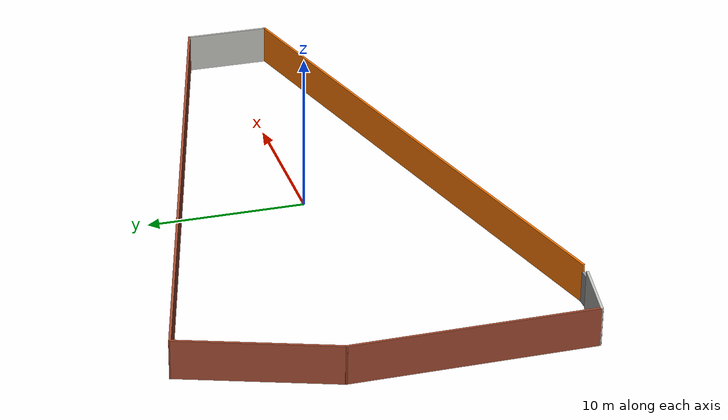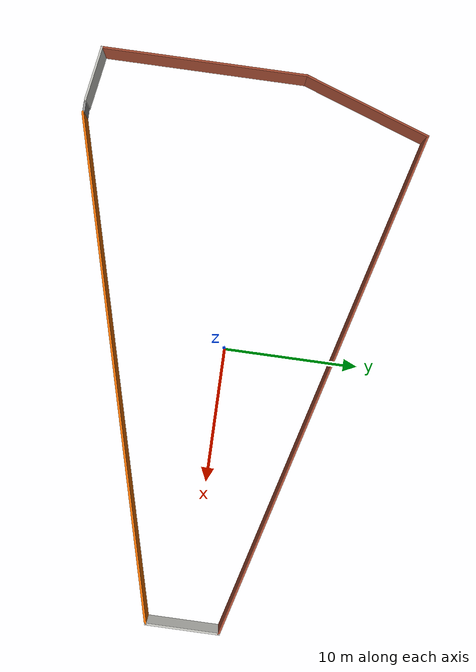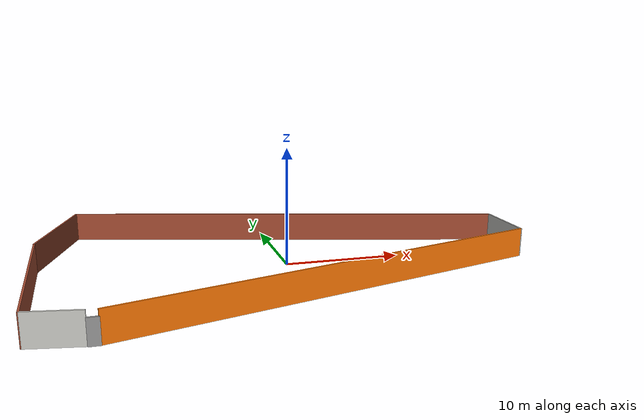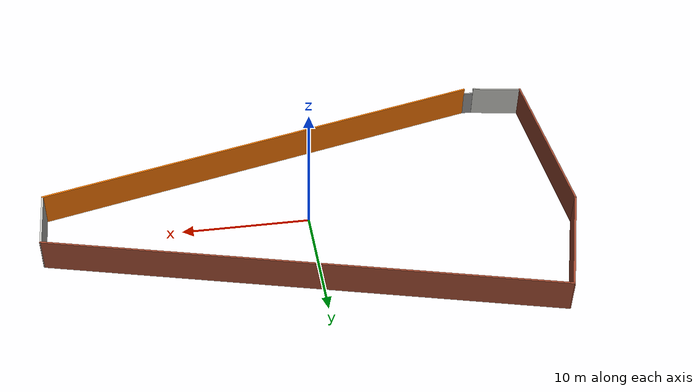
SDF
<?xml version='1.0'?>
<sdf version='1.6'>
  <model name='Building'>
    <link name='Door_0'>
      <pose frame=''>-16.0335 -12.5896 0 0 -0 0</pose>
      <self_collide>0</self_collide>
      <enable_wind>0</enable_wind>
      <kinematic>0</kinematic>
      <visual name='Door_0_Visual'>
        <pose frame=''>0 0 1 0 -0 0</pose>
        <geometry>
          <box>
            <size>0.9 0.17 2</size>
          </box>
        </geometry>
        <material>
          <script>
            <uri>file://media/materials/scripts/gazebo.material</uri>
            <name>Gazebo/Grey</name>
          </script>
        </material>
        <transparency>0</transparency>
        <cast_shadows>1</cast_shadows>
      </visual>
      <collision name='Door_0_Collision'>
        <laser_retro>0</laser_retro>
        <max_contacts>10</max_contacts>
        <pose frame=''>0 0 1 0 -0 0</pose>
        <geometry>
          <box>
            <size>0.9 0.17 2</size>
          </box>
        </geometry>
        <surface>
          <friction>
            <ode>
              <mu>1</mu>
              <mu2>1</mu2>
              <fdir1>0 0 0</fdir1>
              <slip1>0</slip1>
              <slip2>0</slip2>
            </ode>
            <torsional>
              <coefficient>1</coefficient>
              <patch_radius>0</patch_radius>
              <surface_radius>0</surface_radius>
              <use_patch_radius>1</use_patch_radius>
              <ode>
                <slip>0</slip>
              </ode>
            </torsional>
          </friction>
          <bounce>
            <restitution_coefficient>0</restitution_coefficient>
            <threshold>1e+06</threshold>
          </bounce>
          <contact>
            <collide_without_contact>0</collide_without_contact>
            <collide_without_contact_bitmask>1</collide_without_contact_bitmask>
            <collide_bitmask>1</collide_bitmask>
            <ode>
              <soft_cfm>0</soft_cfm>
              <soft_erp>0.2</soft_erp>
              <kp>1e+13</kp>
              <kd>1</kd>
              <max_vel>0.01</max_vel>
              <min_depth>0</min_depth>
            </ode>
            <bullet>
              <split_impulse>1</split_impulse>
              <split_impulse_penetration_threshold>-0.01</split_impulse_penetration_threshold>
              <soft_cfm>0</soft_cfm>
              <soft_erp>0.2</soft_erp>
              <kp>1e+13</kp>
              <kd>1</kd>
            </bullet>
          </contact>
        </surface>
      </collision>
    </link>
    <link name='Wall_1'>
      <pose frame=''>-20.481 -4.29272 0 0 -0 1.5708</pose>
      <self_collide>0</self_collide>
      <enable_wind>0</enable_wind>
      <kinematic>0</kinematic>
      <visual name='Wall_1_Visual'>
        <pose frame=''>0 0 1.25 0 -0 0</pose>
        <geometry>
          <box>
            <size>15.25 0.15 2.5</size>
          </box>
        </geometry>
        <material>
          <script>
            <uri>file://media/materials/scripts/gazebo.material</uri>
            <name>Gazebo/Bricks</name>
          </script>
          <ambient>1 1 1 1</ambient>
        </material>
        <meta>
          <layer>0</layer>
        </meta>
        <transparency>0</transparency>
        <cast_shadows>1</cast_shadows>
      </visual>
      <collision name='Wall_1_Collision'>
        <laser_retro>0</laser_retro>
        <max_contacts>10</max_contacts>
        <pose frame=''>0 0 1.25 0 -0 0</pose>
        <geometry>
          <box>
            <size>15.25 0.15 2.5</size>
          </box>
        </geometry>
        <surface>
          <friction>
            <ode>
              <mu>1</mu>
              <mu2>1</mu2>
              <fdir1>0 0 0</fdir1>
              <slip1>0</slip1>
              <slip2>0</slip2>
            </ode>
            <torsional>
              <coefficient>1</coefficient>
              <patch_radius>0</patch_radius>
              <surface_radius>0</surface_radius>
              <use_patch_radius>1</use_patch_radius>
              <ode>
                <slip>0</slip>
              </ode>
            </torsional>
          </friction>
          <bounce>
            <restitution_coefficient>0</restitution_coefficient>
            <threshold>1e+06</threshold>
          </bounce>
          <contact>
            <collide_without_contact>0</collide_without_contact>
            <collide_without_contact_bitmask>1</collide_without_contact_bitmask>
            <collide_bitmask>1</collide_bitmask>
            <ode>
              <soft_cfm>0</soft_cfm>
              <soft_erp>0.2</soft_erp>
              <kp>1e+13</kp>
              <kd>1</kd>
              <max_vel>0.01</max_vel>
              <min_depth>0</min_depth>
            </ode>
            <bullet>
              <split_impulse>1</split_impulse>
              <split_impulse_penetration_threshold>-0.01</split_impulse_penetration_threshold>
              <soft_cfm>0</soft_cfm>
              <soft_erp>0.2</soft_erp>
              <kp>1e+13</kp>
              <kd>1</kd>
            </bullet>
          </contact>
        </surface>
      </collision>
    </link>
    <link name='Wall_10'>
      <pose frame=''>-18.8821 7.91196 0 0 0 -1.90166</pose>
      <self_collide>0</self_collide>
      <enable_wind>0</enable_wind>
      <kinematic>0</kinematic>
      <visual name='Wall_10_Visual'>
        <pose frame=''>0 0 1.25 0 -0 0</pose>
        <geometry>
          <box>
            <size>9.99324 0.15 2.5</size>
          </box>
        </geometry>
        <material>
          <script>
            <uri>file://media/materials/scripts/gazebo.material</uri>
            <name>Gazebo/Bricks</name>
          </script>
          <ambient>1 1 1 1</ambient>
        </material>
        <meta>
          <layer>0</layer>
        </meta>
        <transparency>0</transparency>
        <cast_shadows>1</cast_shadows>
      </visual>
      <collision name='Wall_10_Collision'>
        <laser_retro>0</laser_retro>
        <max_contacts>10</max_contacts>
        <pose frame=''>0 0 1.25 0 -0 0</pose>
        <geometry>
          <box>
            <size>9.99324 0.15 2.5</size>
          </box>
        </geometry>
        <surface>
          <friction>
            <ode>
              <mu>1</mu>
              <mu2>1</mu2>
              <fdir1>0 0 0</fdir1>
              <slip1>0</slip1>
              <slip2>0</slip2>
            </ode>
            <torsional>
              <coefficient>1</coefficient>
              <patch_radius>0</patch_radius>
              <surface_radius>0</surface_radius>
              <use_patch_radius>1</use_patch_radius>
              <ode>
                <slip>0</slip>
              </ode>
            </torsional>
          </friction>
          <bounce>
            <restitution_coefficient>0</restitution_coefficient>
            <threshold>1e+06</threshold>
          </bounce>
          <contact>
            <collide_without_contact>0</collide_without_contact>
            <collide_without_contact_bitmask>1</collide_without_contact_bitmask>
            <collide_bitmask>1</collide_bitmask>
            <ode>
              <soft_cfm>0</soft_cfm>
              <soft_erp>0.2</soft_erp>
              <kp>1e+13</kp>
              <kd>1</kd>
              <max_vel>0.01</max_vel>
              <min_depth>0</min_depth>
            </ode>
            <bullet>
              <split_impulse>1</split_impulse>
              <split_impulse_penetration_threshold>-0.01</split_impulse_penetration_threshold>
              <soft_cfm>0</soft_cfm>
              <soft_erp>0.2</soft_erp>
              <kp>1e+13</kp>
              <kd>1</kd>
            </bullet>
          </contact>
        </surface>
      </collision>
    </link>
    <link name='Wall_5'>
      <pose frame=''>-18.4984 -12.1756 0 0 -0 2.97522</pose>
      <self_collide>0</self_collide>
      <enable_wind>0</enable_wind>
      <kinematic>0</kinematic>
      <visual name='Wall_5_Visual'>
        <pose frame=''>0 0 1.25 0 -0 0</pose>
        <geometry>
          <box>
            <size>4.17063 0.15 2.5</size>
          </box>
        </geometry>
        <material>
          <script>
            <uri>file://media/materials/scripts/gazebo.material</uri>
            <name>Gazebo/CeilingTiled</name>
          </script>
          <ambient>1 1 1 1</ambient>
        </material>
        <meta>
          <layer>0</layer>
        </meta>
        <transparency>0</transparency>
        <cast_shadows>1</cast_shadows>
      </visual>
      <collision name='Wall_5_Collision'>
        <laser_retro>0</laser_retro>
        <max_contacts>10</max_contacts>
        <pose frame=''>0 0 1.25 0 -0 0</pose>
        <geometry>
          <box>
            <size>4.17063 0.15 2.5</size>
          </box>
        </geometry>
        <surface>
          <friction>
            <ode>
              <mu>1</mu>
              <mu2>1</mu2>
              <fdir1>0 0 0</fdir1>
              <slip1>0</slip1>
              <slip2>0</slip2>
            </ode>
            <torsional>
              <coefficient>1</coefficient>
              <patch_radius>0</patch_radius>
              <surface_radius>0</surface_radius>
              <use_patch_radius>1</use_patch_radius>
              <ode>
                <slip>0</slip>
              </ode>
            </torsional>
          </friction>
          <bounce>
            <restitution_coefficient>0</restitution_coefficient>
            <threshold>1e+06</threshold>
          </bounce>
          <contact>
            <collide_without_contact>0</collide_without_contact>
            <collide_without_contact_bitmask>1</collide_without_contact_bitmask>
            <collide_bitmask>1</collide_bitmask>
            <ode>
              <soft_cfm>0</soft_cfm>
              <soft_erp>0.2</soft_erp>
              <kp>1e+13</kp>
              <kd>1</kd>
              <max_vel>0.01</max_vel>
              <min_depth>0</min_depth>
            </ode>
            <bullet>
              <split_impulse>1</split_impulse>
              <split_impulse_penetration_threshold>-0.01</split_impulse_penetration_threshold>
              <soft_cfm>0</soft_cfm>
              <soft_erp>0.2</soft_erp>
              <kp>1e+13</kp>
              <kd>1</kd>
            </bullet>
          </contact>
        </surface>
      </collision>
    </link>
    <link name='Wall_7'>
      <pose frame=''>2.44574 -7.73663 0 0 -0 0.261799</pose>
      <self_collide>0</self_collide>
      <enable_wind>0</enable_wind>
      <kinematic>0</kinematic>
      <visual name='Wall_7_Visual'>
        <pose frame=''>0 0 1.25 0 -0 0</pose>
        <geometry>
          <box>
            <size>37.5 0.15 2.5</size>
          </box>
        </geometry>
        <material>
          <script>
            <uri>file://media/materials/scripts/gazebo.material</uri>
            <name>Gazebo/Grey</name>
          </script>
          <ambient>0.996078 0.47451 0.0196078 1</ambient>
        </material>
        <meta>
          <layer>0</layer>
        </meta>
        <transparency>0</transparency>
        <cast_shadows>1</cast_shadows>
      </visual>
      <collision name='Wall_7_Collision'>
        <laser_retro>0</laser_retro>
        <max_contacts>10</max_contacts>
        <pose frame=''>0 0 1.25 0 -0 0</pose>
        <geometry>
          <box>
            <size>37.5 0.15 2.5</size>
          </box>
        </geometry>
        <surface>
          <friction>
            <ode>
              <mu>1</mu>
              <mu2>1</mu2>
              <fdir1>0 0 0</fdir1>
              <slip1>0</slip1>
              <slip2>0</slip2>
            </ode>
            <torsional>
              <coefficient>1</coefficient>
              <patch_radius>0</patch_radius>
              <surface_radius>0</surface_radius>
              <use_patch_radius>1</use_patch_radius>
              <ode>
                <slip>0</slip>
              </ode>
            </torsional>
          </friction>
          <bounce>
            <restitution_coefficient>0</restitution_coefficient>
            <threshold>1e+06</threshold>
          </bounce>
          <contact>
            <collide_without_contact>0</collide_without_contact>
            <collide_without_contact_bitmask>1</collide_without_contact_bitmask>
            <collide_bitmask>1</collide_bitmask>
            <ode>
              <soft_cfm>0</soft_cfm>
              <soft_erp>0.2</soft_erp>
              <kp>1e+13</kp>
              <kd>1</kd>
              <max_vel>0.01</max_vel>
              <min_depth>0</min_depth>
            </ode>
            <bullet>
              <split_impulse>1</split_impulse>
              <split_impulse_penetration_threshold>-0.01</split_impulse_penetration_threshold>
              <soft_cfm>0</soft_cfm>
              <soft_erp>0.2</soft_erp>
              <kp>1e+13</kp>
              <kd>1</kd>
            </bullet>
          </contact>
        </surface>
      </collision>
    </link>
    <link name='Wall_8'>
      <pose frame=''>20.4844 -0.228187 0 0 -0 1.5708</pose>
      <self_collide>0</self_collide>
      <enable_wind>0</enable_wind>
      <kinematic>0</kinematic>
      <visual name='Wall_8_Visual'>
        <pose frame=''>0 0 1.25 0 -0 0</pose>
        <geometry>
          <box>
            <size>5.5 0.15 2.5</size>
          </box>
        </geometry>
        <material>
          <script>
            <uri>file://media/materials/scripts/gazebo.material</uri>
            <name>Gazebo/CeilingTiled</name>
          </script>
          <ambient>1 1 1 1</ambient>
        </material>
        <meta>
          <layer>0</layer>
        </meta>
        <transparency>0</transparency>
        <cast_shadows>1</cast_shadows>
      </visual>
      <collision name='Wall_8_Collision'>
        <laser_retro>0</laser_retro>
        <max_contacts>10</max_contacts>
        <pose frame=''>0 0 1.25 0 -0 0</pose>
        <geometry>
          <box>
            <size>5.5 0.15 2.5</size>
          </box>
        </geometry>
        <surface>
          <friction>
            <ode>
              <mu>1</mu>
              <mu2>1</mu2>
              <fdir1>0 0 0</fdir1>
              <slip1>0</slip1>
              <slip2>0</slip2>
            </ode>
            <torsional>
              <coefficient>1</coefficient>
              <patch_radius>0</patch_radius>
              <surface_radius>0</surface_radius>
              <use_patch_radius>1</use_patch_radius>
              <ode>
                <slip>0</slip>
              </ode>
            </torsional>
          </friction>
          <bounce>
            <restitution_coefficient>0</restitution_coefficient>
            <threshold>1e+06</threshold>
          </bounce>
          <contact>
            <collide_without_contact>0</collide_without_contact>
            <collide_without_contact_bitmask>1</collide_without_contact_bitmask>
            <collide_bitmask>1</collide_bitmask>
            <ode>
              <soft_cfm>0</soft_cfm>
              <soft_erp>0.2</soft_erp>
              <kp>1e+13</kp>
              <kd>1</kd>
              <max_vel>0.01</max_vel>
              <min_depth>0</min_depth>
            </ode>
            <bullet>
              <split_impulse>1</split_impulse>
              <split_impulse_penetration_threshold>-0.01</split_impulse_penetration_threshold>
              <soft_cfm>0</soft_cfm>
              <soft_erp>0.2</soft_erp>
              <kp>1e+13</kp>
              <kd>1</kd>
            </bullet>
          </contact>
        </surface>
      </collision>
    </link>
    <link name='Wall_9'>
      <pose frame=''>1.60055 7.50673 0 0 -0 2.87979</pose>
      <self_collide>0</self_collide>
      <enable_wind>0</enable_wind>
      <kinematic>0</kinematic>
      <visual name='Wall_9_Visual'>
        <pose frame=''>0 0 1.25 0 -0 0</pose>
        <geometry>
          <box>
            <size>39.25 0.15 2.5</size>
          </box>
        </geometry>
        <material>
          <script>
            <uri>file://media/materials/scripts/gazebo.material</uri>
            <name>Gazebo/Bricks</name>
          </script>
          <ambient>1 1 1 1</ambient>
        </material>
        <meta>
          <layer>0</layer>
        </meta>
        <transparency>0</transparency>
        <cast_shadows>1</cast_shadows>
      </visual>
      <collision name='Wall_9_Collision'>
        <laser_retro>0</laser_retro>
        <max_contacts>10</max_contacts>
        <pose frame=''>0 0 1.25 0 -0 0</pose>
        <geometry>
          <box>
            <size>39.25 0.15 2.5</size>
          </box>
        </geometry>
        <surface>
          <friction>
            <ode>
              <mu>1</mu>
              <mu2>1</mu2>
              <fdir1>0 0 0</fdir1>
              <slip1>0</slip1>
              <slip2>0</slip2>
            </ode>
            <torsional>
              <coefficient>1</coefficient>
              <patch_radius>0</patch_radius>
              <surface_radius>0</surface_radius>
              <use_patch_radius>1</use_patch_radius>
              <ode>
                <slip>0</slip>
              </ode>
            </torsional>
          </friction>
          <bounce>
            <restitution_coefficient>0</restitution_coefficient>
            <threshold>1e+06</threshold>
          </bounce>
          <contact>
            <collide_without_contact>0</collide_without_contact>
            <collide_without_contact_bitmask>1</collide_without_contact_bitmask>
            <collide_bitmask>1</collide_bitmask>
            <ode>
              <soft_cfm>0</soft_cfm>
              <soft_erp>0.2</soft_erp>
              <kp>1e+13</kp>
              <kd>1</kd>
              <max_vel>0.01</max_vel>
              <min_depth>0</min_depth>
            </ode>
            <bullet>
              <split_impulse>1</split_impulse>
              <split_impulse_penetration_threshold>-0.01</split_impulse_penetration_threshold>
              <soft_cfm>0</soft_cfm>
              <soft_erp>0.2</soft_erp>
              <kp>1e+13</kp>
              <kd>1</kd>
            </bullet>
          </contact>
        </surface>
      </collision>
    </link>
    <static>1</static>
    <allow_auto_disable>1</allow_auto_disable>
  </model>
</sdf>
